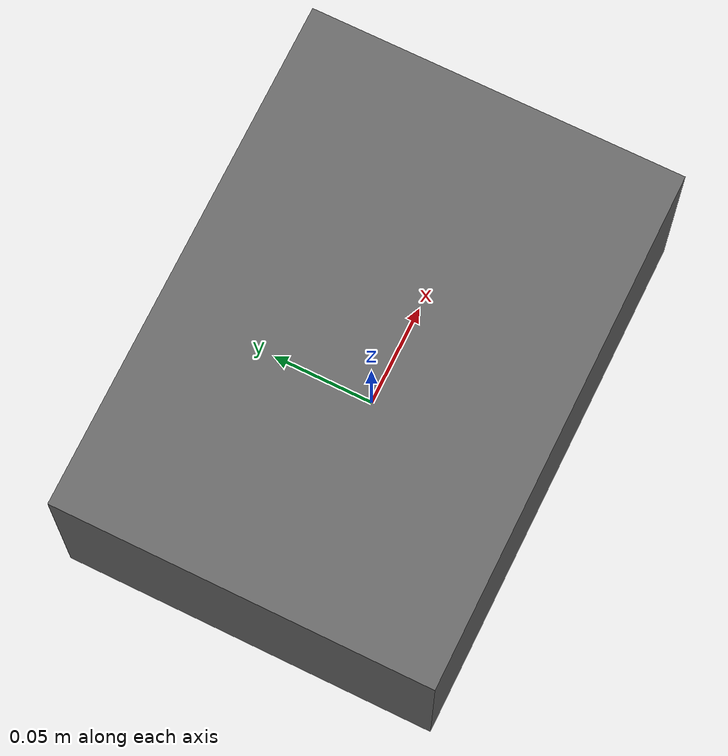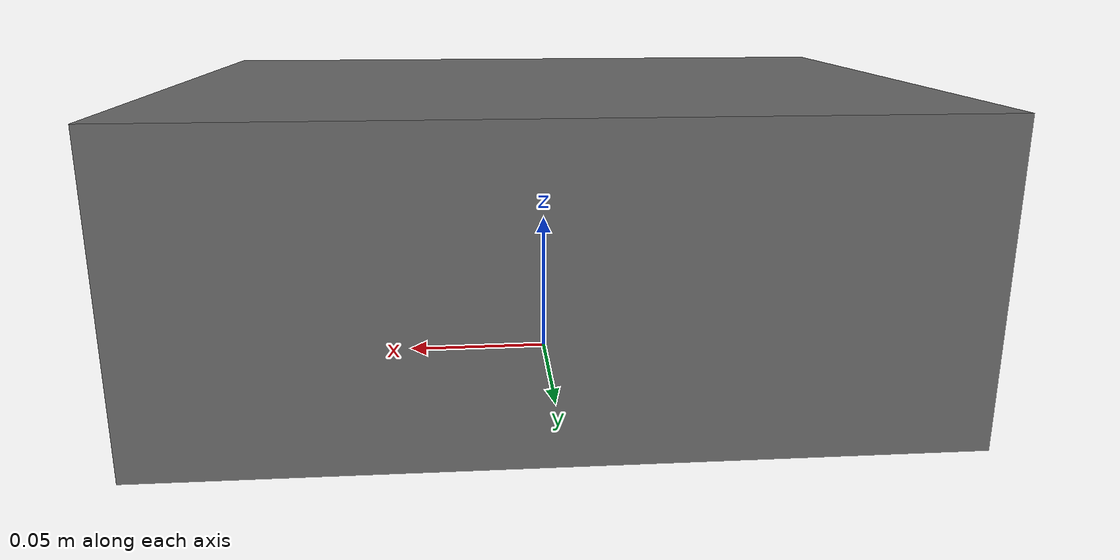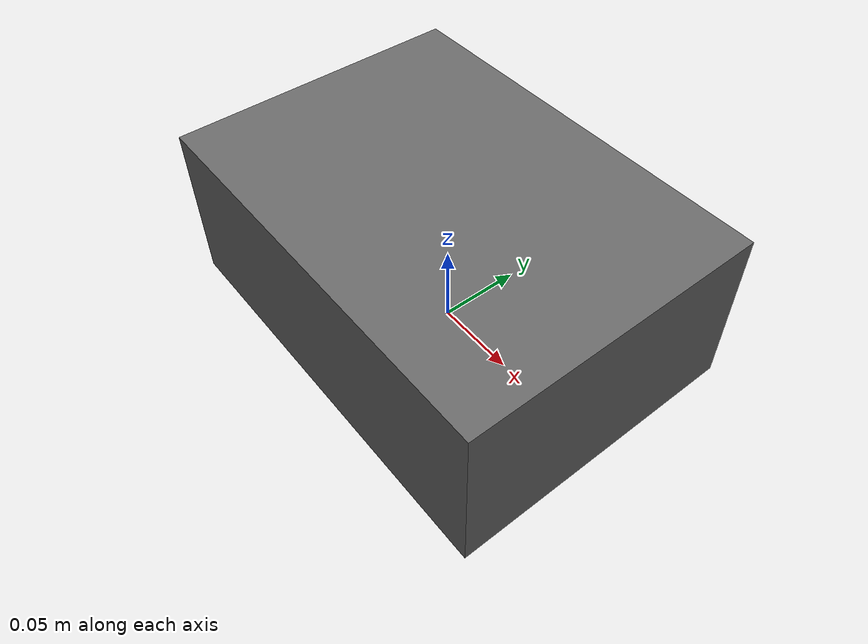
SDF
<?xml version='1.0'?>
<sdf version='1.7'>
  <model name='slider_box_2'>
    <link name='link_2'>
      <pose>-0 -0 0.05 0 -0 0</pose>
      <inertial>
        <mass>5</mass>
        <inertia>
          <ixx>1</ixx>
          <ixy>0</ixy>
          <ixz>0</ixz>
          <iyy>1</iyy>
          <iyz>0</iyz>
          <izz>1</izz>
        </inertia>
        <pose>0 0 0 0 -0 0</pose>
      </inertial>
      <self_collide>0</self_collide>
      <enable_wind>0</enable_wind>
      <kinematic>0</kinematic>
      <gravity>0</gravity>
      <visual name='visual'>
        <geometry>
          <box>
            <size>0.25 0.18 0.1</size>
          </box>
        </geometry>
        <material>
          <diffuse>0.4 0.4 0.4 1</diffuse>
          <shader type='pixel'>
            <normal_map>__default__</normal_map>
          </shader>
          <script>
            <name>ModelPreview_1::link::visual_MATERIAL_</name>
            <uri>__default__</uri>
          </script>
          <ambient>0 0 0 1</ambient>
          <specular>0 0 0 1</specular>
          <emissive>0 0 0 1</emissive>
        </material>
        <pose>0 0 0 0 -0 0</pose>
        <transparency>0</transparency>
        <cast_shadows>1</cast_shadows>
      </visual>
      <collision name='collision'>
        <laser_retro>0</laser_retro>
        <max_contacts>10</max_contacts>
        <pose>0 0 0 0 -0 0</pose>
        <geometry>
          <box>
            <size>0.25 0.2 0.1</size>
          </box>
        </geometry>
        <surface>
          <friction>
            <ode>
              <mu>1</mu>
              <mu2>1</mu2>
              <fdir1>0 0 0</fdir1>
              <slip1>0</slip1>
              <slip2>0</slip2>
            </ode>
            <torsional>
              <coefficient>1</coefficient>
              <patch_radius>0</patch_radius>
              <surface_radius>0</surface_radius>
              <use_patch_radius>1</use_patch_radius>
              <ode>
                <slip>0</slip>
              </ode>
            </torsional>
          </friction>
          <bounce>
            <restitution_coefficient>0</restitution_coefficient>
            <threshold>1e+06</threshold>
          </bounce>
          <contact>
            <collide_without_contact>0</collide_without_contact>
            <collide_without_contact_bitmask>1</collide_without_contact_bitmask>
            <collide_bitmask>1</collide_bitmask>
            <ode>
              <soft_cfm>0</soft_cfm>
              <soft_erp>0.2</soft_erp>
              <kp>1e+13</kp>
              <kd>1</kd>
              <max_vel>0.01</max_vel>
              <min_depth>0</min_depth>
            </ode>
            <bullet>
              <split_impulse>1</split_impulse>
              <split_impulse_penetration_threshold>-0.01</split_impulse_penetration_threshold>
              <soft_cfm>0</soft_cfm>
              <soft_erp>0.2</soft_erp>
              <kp>1e+13</kp>
              <kd>1</kd>
            </bullet>
          </contact>
        </surface>
      </collision>
    </link>
    <static>0</static>
    <allow_auto_disable>1</allow_auto_disable>
    <plugin name='slider_box_plugin_2' filename='libslider_box_plugin_2.so'>
      <ros>
        <namespace/>
      </ros>
    </plugin>
  </model>
</sdf>
